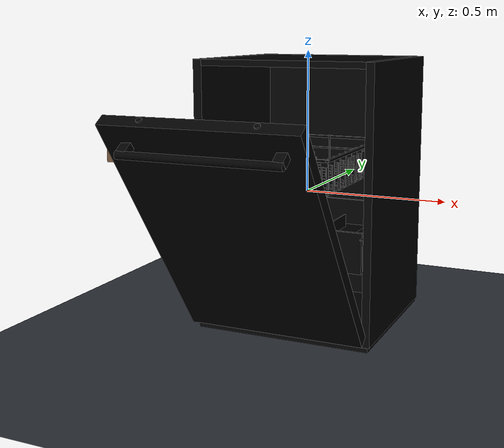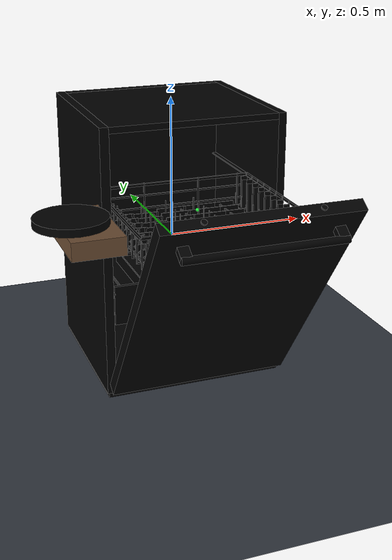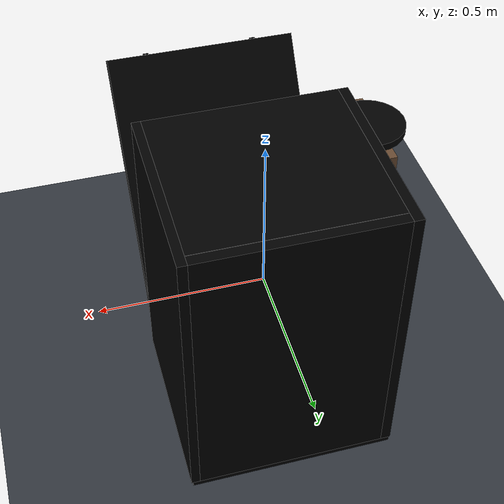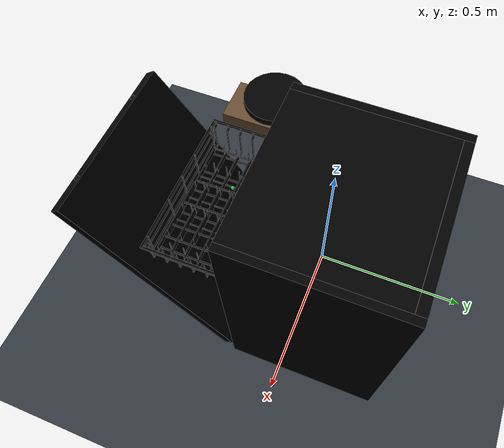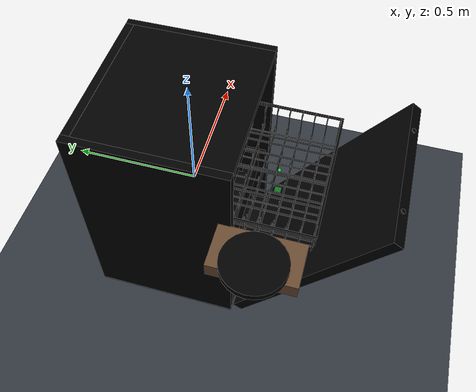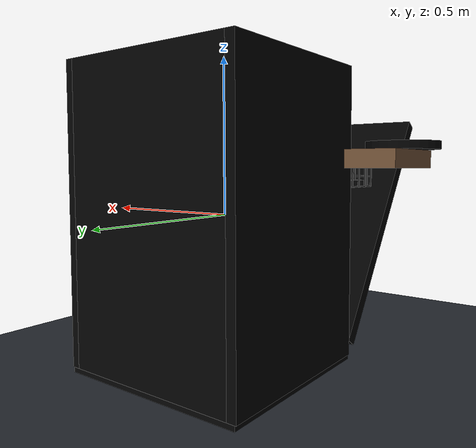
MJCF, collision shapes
<mujoco model="aao_dishwasher_plate">
  <compiler angle="radian" meshdir="../../../meshes" texturedir="../../../meshes"/>
  <option timestep="0.002" gravity="0 0 -9.81" integrator="implicitfast"/>
  <visual>
    <global azimuth="135" elevation="-20"/>
  </visual>
  <default>
    <joint damping="25" armature="0.02"/>
    <geom friction="1.0 0.02 0.002" solref="0.01 1"/>
    <position kp="600" kv="45"/>
  </default>

  <asset>
    <mesh name="plate2_mesh" file="dishwasher_plate/plate2/plate2.obj"/>
    <include file="includes/dishwasher031_assets.xml"/>
    <material name="floor" rgba="0.20 0.22 0.25 1"/>
    <material name="source_table" rgba="0.42 0.30 0.20 1"/>
    <material name="robot" rgba="0.25 0.55 0.85 1"/>
    <material name="target" rgba="0.15 0.75 0.25 0.65"/>
    <material name="plate" rgba="0.88 0.74 0.42 1"/>
  </asset>

  <worldbody>
    <light pos="0 -0.3 1.4" dir="0 0 -1" diffuse="0.9 0.9 0.9"/>
    <camera name="placement_camera" pos="0 -1.4 0.8"
            xyaxes="1 0 0 0 0.492 0.870" fovy="52"/>
    <geom name="floor" type="plane" pos="0 0 -0.478"
          size="1.0 1.2 0.05" material="floor"/>

    <body name="dishwasher">
      <include file="includes/dishwasher031_common.xml"/>

      <!-- The extracted upper rack uses mesh-derived local wire proxies. -->
      <body name="dishwasher_rack1" pos="0 -0.33 0">
        <include file="includes/dishwasher031_rack1_articulation.xml"/>
        <!-- Generated geometry and task contact policy are versioned separately. -->
        <include file="includes/dishwasher031_rack1_vertical_collision.xml"/>

        <body name="dishwasher_rack1_target" pos="-0.03487368 -0.0236405 0.20811805">
          <geom name="target_pad" type="box" pos="0 0 -0.120665074"
                size="0.012 0.012 0.0005" material="target"
                contype="0" conaffinity="0"/>
          <site name="dishwasher_rack1_target_site" pos="0 0 0"
                size="0.006" rgba="0.15 1 0.25 1"/>
        </body>
      </body>
    </body>

    <!-- Planner-only floor guard prevents trajectories below the appliance and rack. -->
    <geom name="planner_floor_guard" type="box" pos="0 -0.20 -0.035"
          size="0.75 0.90 0.025" rgba="0 0 0 0" contype="0" conaffinity="0"/>

    <geom name="source_table" type="box" pos="-0.405 -0.360 0.180560989"
          size="0.085 0.160 0.030" material="source_table"/>

    <!-- plate2 is horizontal: the mesh and collision-cylinder normal is +Z. -->
    <body name="plate2" pos="-0.450 -0.360 0.223671074">
      <freejoint name="plate2_joint"/>
      <site name="plate2_site" pos="0 0 0" size="0.006" rgba="1 0.75 0.2 1"/>
      <geom name="plate2_visual" type="mesh" mesh="plate2_mesh"
            pos="0.000074340 0.000103035 0.000636195"
            material="plate" mass="0" contype="0" conaffinity="0"/>
      <geom name="plate2_collision" type="cylinder" size="0.120165074 0.013110085"
            mass="0.35" rgba="0 0 0 0" condim="6" friction="1.0 0.1 0.02"/>
    </body>
  </worldbody>

  <actuator>
    <include file="includes/dishwasher031_actuators.xml"/>
  </actuator>
</mujoco>

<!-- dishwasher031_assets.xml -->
<mujocoinclude>
  <mesh name="dishwasher_body_visual"
        file="dishwasher_plate/dishwasher031/Body001.obj"/>
  <mesh name="dishwasher_door_visual"
        file="dishwasher_plate/dishwasher031/door.obj"/>
  <mesh name="dishwasher_button_lock_visual"
        file="dishwasher_plate/dishwasher031/button_lock.obj"/>
  <mesh name="dishwasher_button_power_visual"
        file="dishwasher_plate/dishwasher031/button_power.obj"/>
  <mesh name="dishwasher_rack0_visual"
        file="dishwasher_plate/dishwasher031/rack0.obj"/>
  <mesh name="dishwasher_rack1_visual"
        file="dishwasher_plate/dishwasher031/rack1.obj"/>
  <texture name="dishwasher_texture" type="2d"
           file="dishwasher_plate/dishwasher031/T_BC001.png"/>
  <material name="dishwasher" texture="dishwasher_texture"
            rgba="1 1 1 1" shininess="0.1" specular="0.6"/>
  <material name="rack" rgba="0.42 0.45 0.48 1"
            metallic="0.25" roughness="0.55"/>
</mujocoinclude>

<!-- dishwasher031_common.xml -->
<mujocoinclude>
  <geom name="dishwasher_body_visual_geom" type="mesh"
        mesh="dishwasher_body_visual" material="dishwasher"
        mass="0" contype="0" conaffinity="0"/>

  <body name="dishwasher_door"
        pos="0 -0.303386998368 0.087427061032"
        quat="0.954803187366 0.297238748139 0 0">
    <joint name="dishwasher_door_joint" type="hinge"
           axis="1 0 0"
           pos="-0.00171831 -0.29211199619594097 -0.4435629010736084"
           limited="true" range="0 0.6035987755982988"
           ref="0.6035987755982988" springref="0"
           damping="1" frictionloss="10" armature="1" stiffness="2"/>
    <geom name="dishwasher_door_visual_geom" type="mesh"
          mesh="dishwasher_door_visual" material="dishwasher"
          mass="0" contype="0" conaffinity="0"/>
    <geom name="dishwasher_door_main" type="box"
          pos="-0.00171831 -0.27046903 0.01473459"
          size="0.314526647329 0.021642966196 0.458297491074"
          rgba="0 0 0 0"/>
    <geom name="dishwasher_door_latch_right" type="box"
          pos="0.24632083 -0.31011658 0.39872193"
          size="0.012813650072 0.019381284714 0.016376437619"
          quat="0.730941057205 0 0.682440578938 0" rgba="0 0 0 0"/>
    <geom name="dishwasher_door_latch_left" type="box"
          pos="-0.23809594 -0.31011658 0.39885226"
          size="0.012395946309 0.019381269813 0.016752798110"
          quat="0.730941057205 0 0.682440578938 0" rgba="0 0 0 0"/>
    <geom name="dishwasher_door_handle" type="cylinder"
          pos="0.00388840 -0.33332097 0.39996758"
          size="0.012235971168 0.258230537176"
          quat="0.707106828690 0.000000012102 0.707106709480 -0.000000012102"
          rgba="0 0 0 0"/>

    <body name="dishwasher_button_lock">
      <joint name="dishwasher_button_lock_joint" type="slide"
             axis="0 0 -1" pos="-0.18298566 -0.26662981 0.47530904"
             limited="true" range="0 0.002" ref="0" springref="-0.0025"
             damping="1" frictionloss="1" armature="0.01" stiffness="4"/>
      <geom name="dishwasher_button_lock_visual_geom" type="mesh"
            mesh="dishwasher_button_lock_visual" material="dishwasher"
            mass="0" contype="0" conaffinity="0"/>
      <geom name="dishwasher_button_lock_collision" type="cylinder"
            pos="-0.18283316 -0.26663026 0.47586274"
            size="0.009277576581 0.002021603519"
            quat="0.707106709480 0 0 -0.707106828690" rgba="0 0 0 0"/>
    </body>
    <body name="dishwasher_button_power">
      <joint name="dishwasher_button_power_joint" type="slide"
             axis="0 0 -1" pos="0.18145567 -0.26662990 0.47530901"
             limited="true" range="0 0.002" ref="0" springref="-0.0025"
             damping="1" frictionloss="1" armature="0.01" stiffness="4"/>
      <geom name="dishwasher_button_power_visual_geom" type="mesh"
            mesh="dishwasher_button_power_visual" material="dishwasher"
            mass="0" contype="0" conaffinity="0"/>
      <geom name="dishwasher_button_power_collision" type="cylinder"
            pos="0.18147971 -0.26663026 0.47586274"
            size="0.009277576581 0.002021603519"
            quat="0.707106709480 0 0 -0.707106828690" rgba="0 0 0 0"/>
    </body>
  </body>

  <!-- Axis-aligned collision decomposition copied from the source cabinet. -->
  <geom name="dishwasher_cabinet_top" type="box"
        pos="0.00155940 0.03263054 0.46358112"
        size="0.293255686760 0.278490543365 0.010836720467" rgba="0 0 0 0"/>
  <geom name="dishwasher_cabinet_right" type="box"
        pos="0.30845612 0.04954802 0.00629329"
        size="0.013749126345 0.295408010483 0.468124508858" rgba="0 0 0 0"/>
  <geom name="dishwasher_cabinet_left" type="box"
        pos="-0.30654550 0.04954801 0.00629329"
        size="0.015659794211 0.295407950878 0.468124508858" rgba="0 0 0 0"/>
  <geom name="dishwasher_cabinet_back" type="box"
        pos="0.00155942 0.32865322 0.00629329"
        size="0.293255686760 0.016302794218 0.468124508858" rgba="0 0 0 0"/>
  <geom name="dishwasher_cabinet_bottom" type="box"
        pos="-0.00038596 0.04952301 -0.46985781"
        size="0.317077636719 0.295432984829 0.008026558906" rgba="0 0 0 0"/>
  <geom name="dishwasher_upper_rail_right" type="box"
        pos="0.28742397 0.04803570 0.19780329"
        size="0.007391098887 0.283953249454 0.001804872649" rgba="0 0 0 0"/>
  <geom name="dishwasher_upper_rail_left" type="box"
        pos="-0.28673527 0.04803570 0.19780329"
        size="0.004961001221 0.283953249454 0.001804872649" rgba="0 0 0 0"/>
  <geom name="dishwasher_lower_rail_left" type="box"
        pos="-0.28673527 0.04803570 -0.09955715"
        size="0.004961001221 0.283953249454 0.001804876374" rgba="0 0 0 0"/>
  <geom name="dishwasher_lower_rail_right" type="box"
        pos="0.28742397 0.04803570 -0.09955715"
        size="0.007391098887 0.283953249454 0.001804876374" rgba="0 0 0 0"/>

  <!-- The lower rack starts retracted and is entirely forbidden. -->
  <body name="dishwasher_rack0">
    <joint name="dishwasher_rack0_joint" type="slide"
           axis="0 -1 0" pos="-0.00163518 0.05106521 -0.15279360"
           limited="true" range="0 0.33" ref="0"
           damping="1" frictionloss="1" armature="0.01" stiffness="0.05"/>
    <geom name="dishwasher_rack0_visual_geom" type="mesh"
          mesh="dishwasher_rack0_visual" material="rack"
          mass="0" contype="0" conaffinity="0"/>
    <geom name="dishwasher_rack0_rib_0" type="box"
          pos="0.05465550 0.05172771 -0.15919490"
          size="0.001964055002 0.202991127968 0.026353538036" rgba="0 0 0 0"/>
    <geom name="dishwasher_rack0_rib_1" type="box"
          pos="-0.04838342 0.05172771 -0.15919490"
          size="0.001964055002 0.202991127968 0.026353538036" rgba="0 0 0 0"/>
    <geom name="dishwasher_rack0_rib_2" type="box"
          pos="-0.13689145 0.05172771 -0.15919490"
          size="0.001964055002 0.202991127968 0.026353538036" rgba="0 0 0 0"/>
    <geom name="dishwasher_rack0_rib_3" type="box"
          pos="-0.22374275 0.05172771 -0.15919490"
          size="0.001964055002 0.202991127968 0.026353538036" rgba="0 0 0 0"/>
    <geom name="dishwasher_rack0_base" type="box"
          pos="-0.00317875 0.05088568 -0.20264810"
          size="0.256795018911 0.250564277172 0.021035809070" rgba="0 0 0 0"/>
    <geom name="dishwasher_rack0_left" type="box"
          pos="-0.27093369 0.05203331 -0.14494359"
          size="0.010546132922 0.248831436038 0.059873435646" rgba="0 0 0 0"/>
    <geom name="dishwasher_rack0_right" type="box"
          pos="0.26400656 0.05203331 -0.14494359"
          size="0.010546132922 0.248831436038 0.059873435646" rgba="0 0 0 0"/>
    <geom name="dishwasher_rack0_front" type="box"
          pos="-0.00012753 -0.20295436 -0.15362094"
          size="0.277037441730 0.005895007402 0.070062935352" rgba="0 0 0 0"/>
    <geom name="dishwasher_rack0_rib_4" type="box"
          pos="0.21544147 0.05172771 -0.15919490"
          size="0.001964055002 0.202991127968 0.026353538036" rgba="0 0 0 0"/>
    <geom name="dishwasher_rack0_back" type="box"
          pos="-0.00012753 0.30668143 -0.15362094"
          size="0.277037441730 0.005895007402 0.070062935352" rgba="0 0 0 0"/>
  </body>
</mujocoinclude>

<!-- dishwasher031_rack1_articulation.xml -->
<mujocoinclude>
  <joint name="dishwasher_rack1_joint" type="slide"
         axis="0 -1 0" pos="-0.00163518 0.05106521 0.14311844"
         limited="true" range="0 0.33" ref="0.33"
         damping="1" frictionloss="1" armature="0.01" stiffness="0.05"/>
  <geom name="dishwasher_rack1_visual_geom" type="mesh"
        mesh="dishwasher_rack1_visual" material="rack"
        mass="0" contype="0" conaffinity="0"/>
</mujocoinclude>

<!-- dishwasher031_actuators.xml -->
<mujocoinclude>
  <motor name="dishwasher_door_actuator"
         joint="dishwasher_door_joint" gear="50"/>
  <motor name="dishwasher_rack0_actuator"
         joint="dishwasher_rack0_joint" gear="50"/>
  <motor name="dishwasher_rack1_actuator"
         joint="dishwasher_rack1_joint" gear="50"/>
  <motor name="dishwasher_button_lock_actuator"
         joint="dishwasher_button_lock_joint" gear="0.5"/>
  <motor name="dishwasher_button_power_actuator"
         joint="dishwasher_button_power_joint" gear="0.5"/>
</mujocoinclude>
